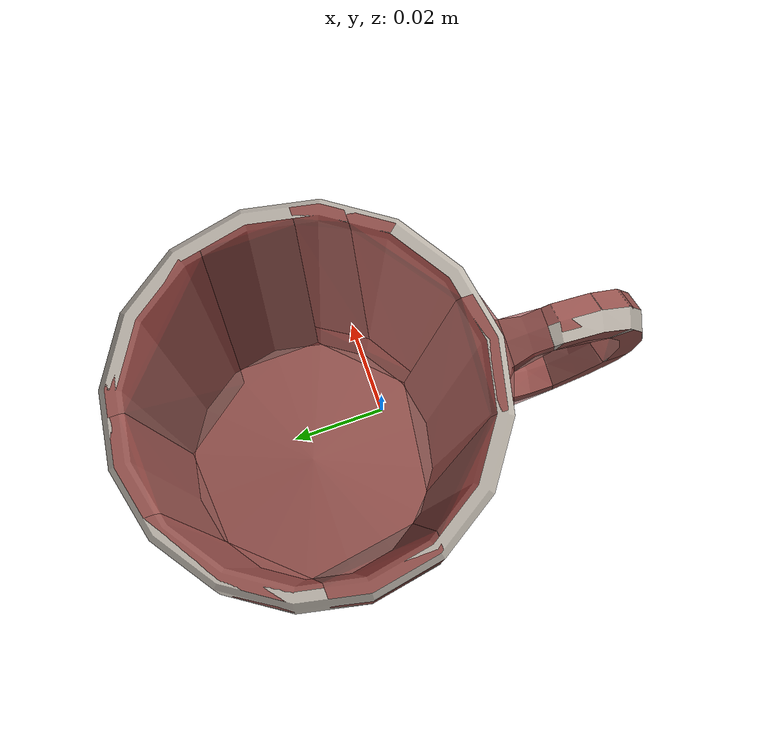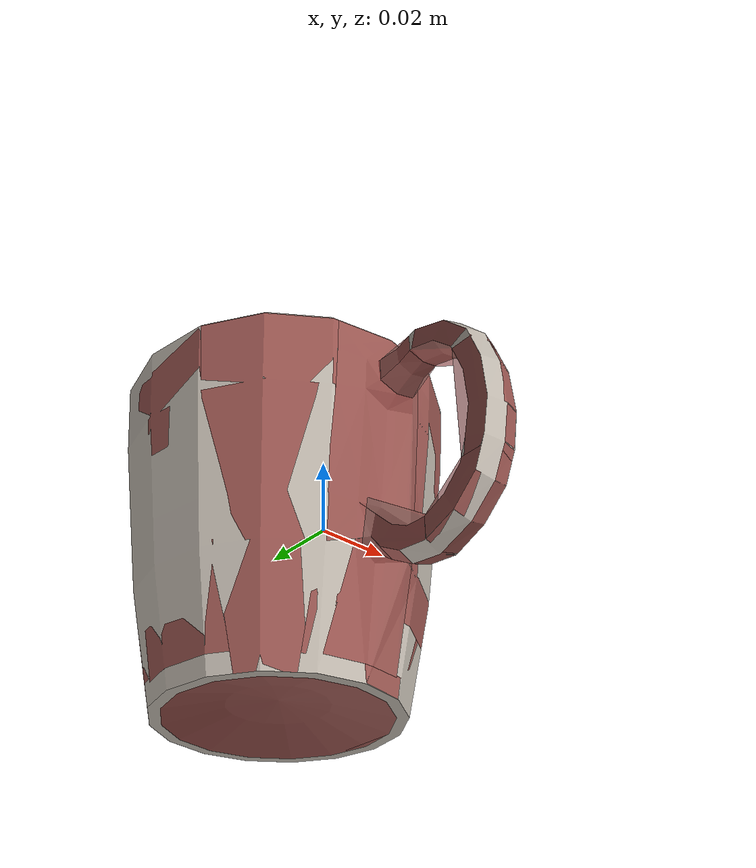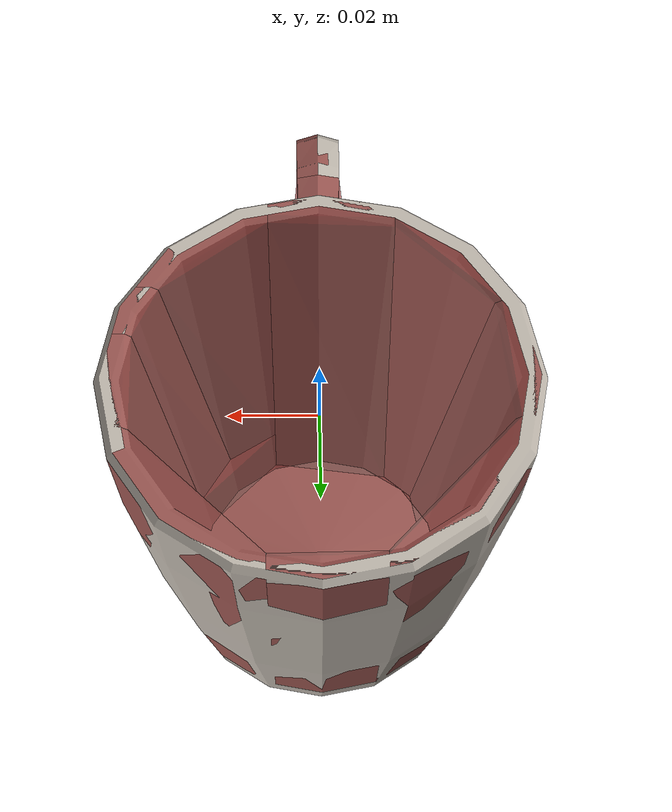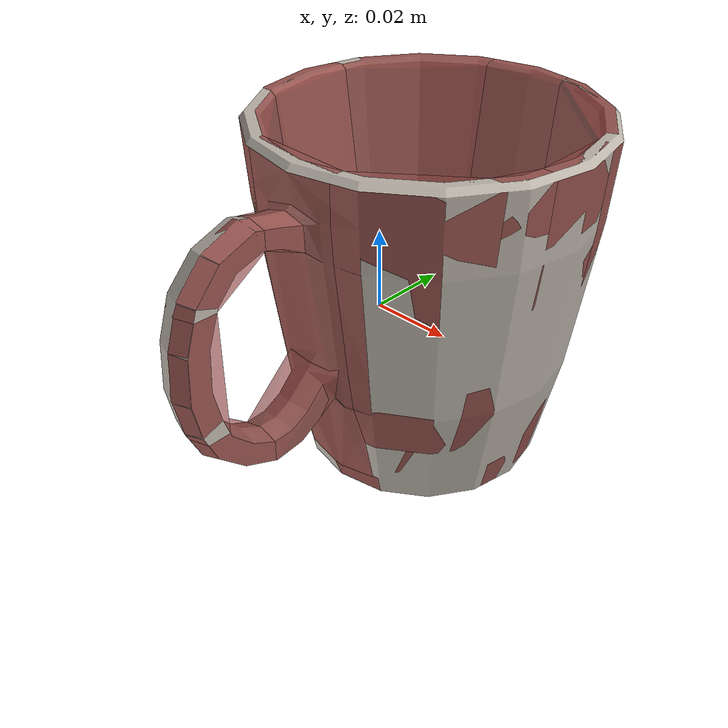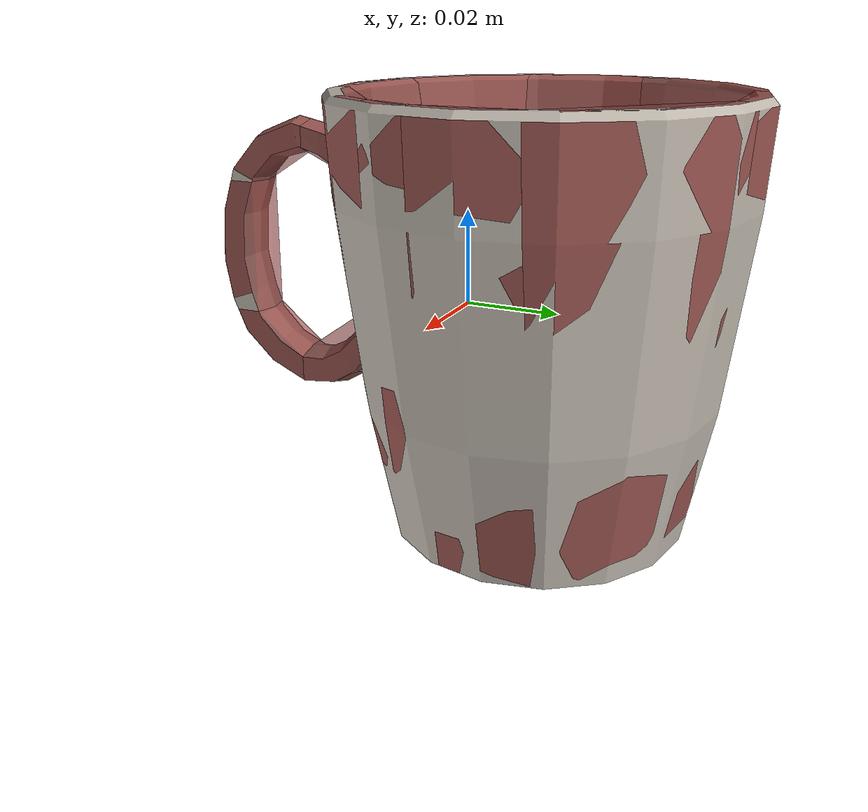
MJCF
<mujoco model="mug_45">
  <asset>
    <mesh file="visual/model_normalized_0.obj" name="model_normalized_0_vis" scale="0.12 0.12 0.12" refquat="-2.220446049250313e-16 0.0 0.0 1.0"/>
    <texture type="2d" name="image0" file="visual/image0.png"/>
    <material name="initialShadingGroup.015" texture="image0" specular="0.5" shininess="0.25"/>
    <mesh file="collision/collision_mesh_collision_0.obj" name="mug_collision_mesh_0" scale="0.12 0.12 0.12" refquat="-2.220446049250313e-16 0.0 0.0 1.0"/>
    <mesh file="collision/collision_mesh_collision_1.obj" name="mug_collision_mesh_1" scale="0.12 0.12 0.12" refquat="-2.220446049250313e-16 0.0 0.0 1.0"/>
    <mesh file="collision/collision_mesh_collision_2.obj" name="mug_collision_mesh_2" scale="0.12 0.12 0.12" refquat="-2.220446049250313e-16 0.0 0.0 1.0"/>
    <mesh file="collision/collision_mesh_collision_3.obj" name="mug_collision_mesh_3" scale="0.12 0.12 0.12" refquat="-2.220446049250313e-16 0.0 0.0 1.0"/>
    <mesh file="collision/collision_mesh_collision_4.obj" name="mug_collision_mesh_4" scale="0.12 0.12 0.12" refquat="-2.220446049250313e-16 0.0 0.0 1.0"/>
    <mesh file="collision/collision_mesh_collision_5.obj" name="mug_collision_mesh_5" scale="0.12 0.12 0.12" refquat="-2.220446049250313e-16 0.0 0.0 1.0"/>
    <mesh file="collision/collision_mesh_collision_6.obj" name="mug_collision_mesh_6" scale="0.12 0.12 0.12" refquat="-2.220446049250313e-16 0.0 0.0 1.0"/>
    <mesh file="collision/collision_mesh_collision_7.obj" name="mug_collision_mesh_7" scale="0.12 0.12 0.12" refquat="-2.220446049250313e-16 0.0 0.0 1.0"/>
    <mesh file="collision/collision_mesh_collision_8.obj" name="mug_collision_mesh_8" scale="0.12 0.12 0.12" refquat="-2.220446049250313e-16 0.0 0.0 1.0"/>
    <mesh file="collision/collision_mesh_collision_9.obj" name="mug_collision_mesh_9" scale="0.12 0.12 0.12" refquat="-2.220446049250313e-16 0.0 0.0 1.0"/>
    <mesh file="collision/collision_mesh_collision_10.obj" name="mug_collision_mesh_10" scale="0.12 0.12 0.12" refquat="-2.220446049250313e-16 0.0 0.0 1.0"/>
    <mesh file="collision/collision_mesh_collision_11.obj" name="mug_collision_mesh_11" scale="0.12 0.12 0.12" refquat="-2.220446049250313e-16 0.0 0.0 1.0"/>
    <mesh file="collision/collision_mesh_collision_12.obj" name="mug_collision_mesh_12" scale="0.12 0.12 0.12" refquat="-2.220446049250313e-16 0.0 0.0 1.0"/>
    <mesh file="collision/collision_mesh_collision_13.obj" name="mug_collision_mesh_13" scale="0.12 0.12 0.12" refquat="-2.220446049250313e-16 0.0 0.0 1.0"/>
    <mesh file="collision/collision_mesh_collision_14.obj" name="mug_collision_mesh_14" scale="0.12 0.12 0.12" refquat="-2.220446049250313e-16 0.0 0.0 1.0"/>
    <mesh file="collision/collision_mesh_collision_15.obj" name="mug_collision_mesh_15" scale="0.12 0.12 0.12" refquat="-2.220446049250313e-16 0.0 0.0 1.0"/>
  </asset>
  <default>
    <default class="region">
      <geom group="1" conaffinity="0" contype="0" rgba="0 1 0 0"/>
    </default>
    <default class="collision">
      <geom group="0" rgba="0.5 0 0 0.5" density="1000.0"/>
    </default>
  </default>
  <worldbody>
    <body>
      <body name="object">
        <geom solimp="0.998 0.998 0.001" solref="0.001 1" density="100" friction="0.95 0.3 0.1" type="mesh" mesh="model_normalized_0_vis" conaffinity="0" contype="0" group="1" material="initialShadingGroup.015"/>
        <geom class="region" name="reg_bbox" type="box" pos="1.0889998701901771e-06 0.0 3.5999999981051186e-09" size="0.043473007417613056 0.059999992847442625 0.0449400648"/>
        <geom mesh="mug_collision_mesh_0" type="mesh" class="collision"/>
        <geom mesh="mug_collision_mesh_1" type="mesh" class="collision"/>
        <geom mesh="mug_collision_mesh_2" type="mesh" class="collision"/>
        <geom mesh="mug_collision_mesh_3" type="mesh" class="collision"/>
        <geom mesh="mug_collision_mesh_4" type="mesh" class="collision"/>
        <geom mesh="mug_collision_mesh_5" type="mesh" class="collision"/>
        <geom mesh="mug_collision_mesh_6" type="mesh" class="collision"/>
        <geom mesh="mug_collision_mesh_7" type="mesh" class="collision"/>
        <geom mesh="mug_collision_mesh_8" type="mesh" class="collision"/>
        <geom mesh="mug_collision_mesh_9" type="mesh" class="collision"/>
        <geom mesh="mug_collision_mesh_10" type="mesh" class="collision"/>
        <geom mesh="mug_collision_mesh_11" type="mesh" class="collision"/>
        <geom mesh="mug_collision_mesh_12" type="mesh" class="collision"/>
        <geom mesh="mug_collision_mesh_13" type="mesh" class="collision"/>
        <geom mesh="mug_collision_mesh_14" type="mesh" class="collision"/>
        <geom mesh="mug_collision_mesh_15" type="mesh" class="collision"/>
        <geom rgba="0 0 0 0" size="0.038 0.012" pos="0 0.018 0.022" type="cylinder" name="liquid" class="region"/>
        <geom rgba="0 0 0 0 " size="0.027 0.042" pos="0 0.016 0.001" type="cylinder" name="reg_int" class="region"/>
      </body>
    </body>
  </worldbody>
</mujoco>
